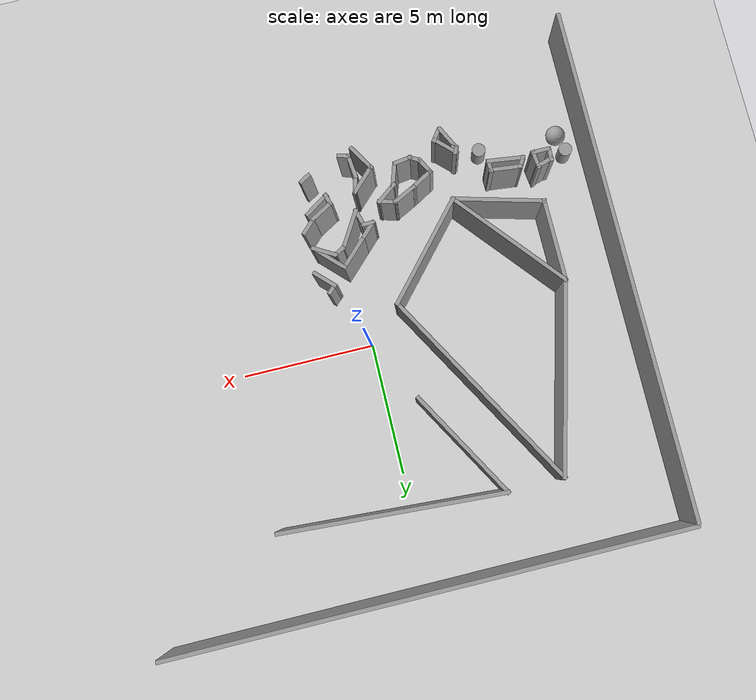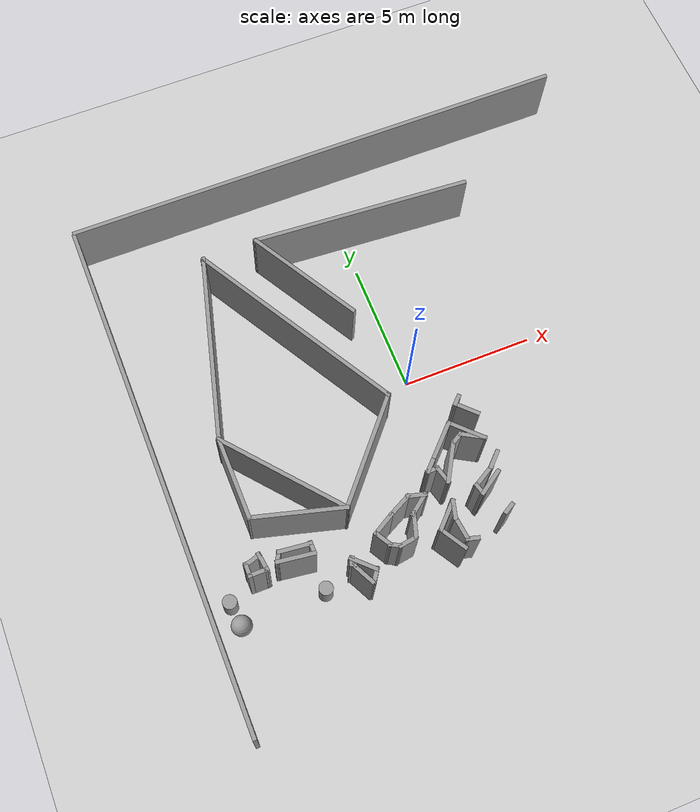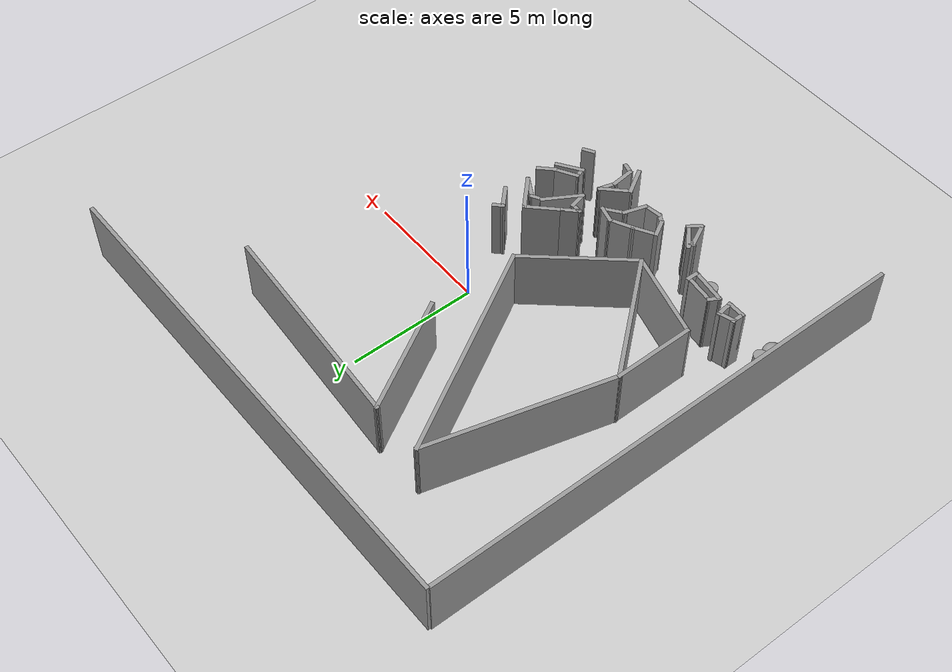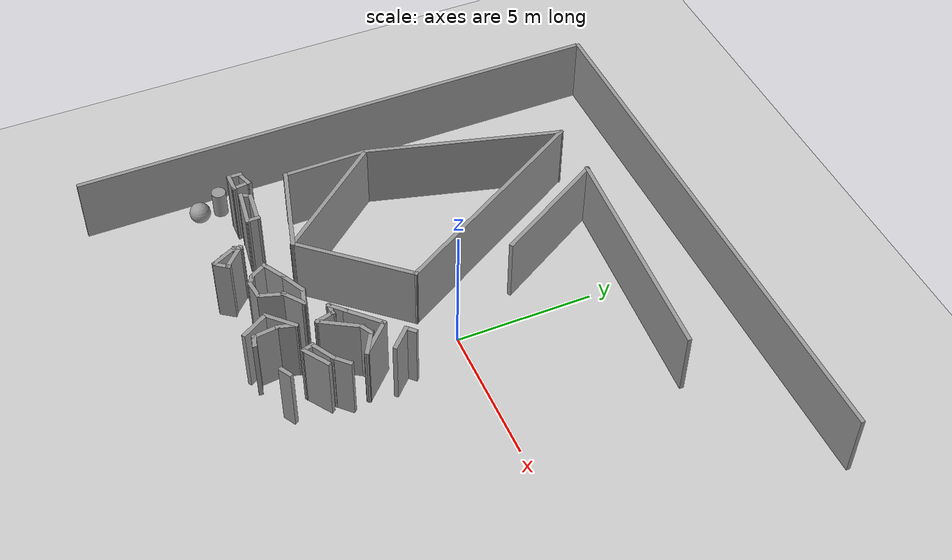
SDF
<sdf version="1.7">
 <world name="default">
  <model name="ground_plane">
   <static>1</static>
   <link name="link">
    <collision name="collision">
     <geometry><plane><normal>0 0 1</normal><size>100 100</size></plane></geometry>
     <surface>
      <contact><collide_bitmask>65535</collide_bitmask></contact>
      <friction><ode><mu>100</mu><mu2>50</mu2></ode></friction>
     </surface>
    </collision>
    <visual name="visual">
     <cast_shadows>0</cast_shadows>
     <geometry><plane><normal>0 0 1</normal><size>100 100</size></plane></geometry>
     <material>
      <script><uri>file://media/materials/scripts/gazebo.material</uri><name>Gazebo/Grey</name></script>
     </material>
    </visual>
   </link>
  </model>
  <model name="Untitled">
   <pose>-0.048209 -0.510974 0 0 -0 0</pose>
   <link name="Wall_100">
    <collision name="Wall_100_Collision">
     <geometry><box><size>0.5 0.15 2.5</size></box></geometry>
     <pose>0 0 1.25 0 -0 0</pose>
    </collision>
    <visual name="Wall_100_Visual">
     <pose>0 0 1.25 0 -0 0</pose>
     <geometry><box><size>0.5 0.15 2.5</size></box></geometry>
     <material>
      <script><uri>file://media/materials/scripts/gazebo.material</uri><name>Gazebo/Grey</name></script>
      <ambient>1 1 1 1</ambient>
     </material>
     <meta><layer>0</layer></meta>
    </visual>
    <pose>0.324081 -4.81813 0 0 -0 -1.309</pose>
   </link>
   <link name="Wall_101">
    <collision name="Wall_101_Collision">
     <geometry><box><size>1.11227 0.15 2.5</size></box></geometry>
     <pose>0 0 1.25 0 -0 0</pose>
    </collision>
    <visual name="Wall_101_Visual">
     <pose>0 0 1.25 0 -0 0</pose>
     <geometry><box><size>1.11227 0.15 2.5</size></box></geometry>
     <material>
      <script><uri>file://media/materials/scripts/gazebo.material</uri><name>Gazebo/Grey</name></script>
      <ambient>1 1 1 1</ambient>
     </material>
     <meta><layer>0</layer></meta>
    </visual>
    <pose>0.769787 -4.72041 0 0 -0 0.587686</pose>
   </link>
   <link name="Wall_105">
    <collision name="Wall_105_Collision">
     <geometry><box><size>1.43609 0.15 2.5</size></box></geometry>
     <pose>0 0 1.25 0 -0 0</pose>
    </collision>
    <visual name="Wall_105_Visual">
     <pose>0 0 1.25 0 -0 0</pose>
     <geometry><box><size>1.43609 0.15 2.5</size></box></geometry>
     <material>
      <script><uri>file://media/materials/scripts/gazebo.material</uri><name>Gazebo/Grey</name></script>
      <ambient>1 1 1 1</ambient>
     </material>
     <meta><layer>0</layer></meta>
    </visual>
    <pose>-6.39374 -4.75098 0 0 -0 3.01015</pose>
   </link>
   <link name="Wall_107">
    <collision name="Wall_107_Collision">
     <geometry><box><size>0.75 0.15 2.5</size></box></geometry>
     <pose>0 0 1.25 0 -0 0</pose>
    </collision>
    <visual name="Wall_107_Visual">
     <pose>0 0 1.25 0 -0 0</pose>
     <geometry><box><size>0.75 0.15 2.5</size></box></geometry>
     <material>
      <script><uri>file://media/materials/scripts/gazebo.material</uri><name>Gazebo/Grey</name></script>
      <ambient>1 1 1 1</ambient>
     </material>
     <meta><layer>0</layer></meta>
    </visual>
    <pose>-7.7393 -4.76864 0 0 -0 0</pose>
   </link>
   <link name="Wall_12">
    <collision name="Wall_12_Collision">
     <geometry><box><size>19.5 0.15 2.5</size></box></geometry>
     <pose>0 0 1.25 0 -0 0</pose>
    </collision>
    <visual name="Wall_12_Visual">
     <pose>0 0 1.25 0 -0 0</pose>
     <geometry><box><size>19.5 0.15 2.5</size></box></geometry>
     <material>
      <script><uri>file://media/materials/scripts/gazebo.material</uri><name>Gazebo/Grey</name></script>
      <ambient>1 1 1 1</ambient>
     </material>
     <meta><layer>0</layer></meta>
    </visual>
    <pose>-9.71201 -0.040722 0 0 -0 1.5708</pose>
   </link>
   <link name="Wall_154">
    <collision name="Wall_154_Collision">
     <geometry><box><size>1.60803 0.15 2.5</size></box></geometry>
     <pose>0 0 1.25 0 -0 0</pose>
    </collision>
    <visual name="Wall_154_Visual">
     <pose>0 0 1.25 0 -0 0</pose>
     <geometry><box><size>1.60803 0.15 2.5</size></box></geometry>
     <material>
      <script><uri>file://media/materials/scripts/gazebo.material</uri><name>Gazebo/Grey</name></script>
      <ambient>1 1 1 1</ambient>
     </material>
     <meta><layer>0</layer></meta>
    </visual>
    <pose>-0.202375 -3.54716 0 0 -0 1.03535</pose>
   </link>
   <link name="Wall_155">
    <collision name="Wall_155_Collision">
     <geometry><box><size>0.50965 0.15 2.5</size></box></geometry>
     <pose>0 0 1.25 0 -0 0</pose>
    </collision>
    <visual name="Wall_155_Visual">
     <pose>0 0 1.25 0 -0 0</pose>
     <geometry><box><size>0.50965 0.15 2.5</size></box></geometry>
     <material>
      <script><uri>file://media/materials/scripts/gazebo.material</uri><name>Gazebo/Grey</name></script>
      <ambient>1 1 1 1</ambient>
     </material>
     <meta><layer>0</layer></meta>
    </visual>
    <pose>0.360562 -2.83275 0 0 -0 0.50772</pose>
   </link>
   <link name="Wall_157">
    <collision name="Wall_157_Collision">
     <geometry><box><size>1.25 0.15 2.5</size></box></geometry>
     <pose>0 0 1.25 0 -0 0</pose>
    </collision>
    <visual name="Wall_157_Visual">
     <pose>0 0 1.25 0 -0 0</pose>
     <geometry><box><size>1.25 0.15 2.5</size></box></geometry>
     <material>
      <script><uri>file://media/materials/scripts/gazebo.material</uri><name>Gazebo/Grey</name></script>
      <ambient>1 1 1 1</ambient>
     </material>
     <meta><layer>0</layer></meta>
    </visual>
    <pose>-1.09648 -5.24869 0 0 -0 -2.35619</pose>
   </link>
   <link name="Wall_158">
    <collision name="Wall_158_Collision">
     <geometry><box><size>1.16438 0.15 2.5</size></box></geometry>
     <pose>0 0 1.25 0 -0 0</pose>
    </collision>
    <visual name="Wall_158_Visual">
     <pose>0 0 1.25 0 -0 0</pose>
     <geometry><box><size>1.16438 0.15 2.5</size></box></geometry>
     <material>
      <script><uri>file://media/materials/scripts/gazebo.material</uri><name>Gazebo/Grey</name></script>
      <ambient>1 1 1 1</ambient>
     </material>
     <meta><layer>0</layer></meta>
    </visual>
    <pose>-1.22348 -6.07192 0 0 -0 -1.02814</pose>
   </link>
   <link name="Wall_160">
    <collision name="Wall_160_Collision">
     <geometry><box><size>0.5 0.15 2.5</size></box></geometry>
     <pose>0 0 1.25 0 -0 0</pose>
    </collision>
    <visual name="Wall_160_Visual">
     <pose>0 0 1.25 0 -0 0</pose>
     <geometry><box><size>0.5 0.15 2.5</size></box></geometry>
     <material>
      <script><uri>file://media/materials/scripts/gazebo.material</uri><name>Gazebo/Grey</name></script>
      <ambient>1 1 1 1</ambient>
     </material>
     <meta><layer>0</layer></meta>
    </visual>
    <pose>-0.603243 -6.30566 0 0 -0 2.87979</pose>
   </link>
   <link name="Wall_161">
    <collision name="Wall_161_Collision">
     <geometry><box><size>0.976019 0.15 2.5</size></box></geometry>
     <pose>0 0 1.25 0 -0 0</pose>
    </collision>
    <visual name="Wall_161_Visual">
     <pose>0 0 1.25 0 -0 0</pose>
     <geometry><box><size>0.976019 0.15 2.5</size></box></geometry>
     <material>
      <script><uri>file://media/materials/scripts/gazebo.material</uri><name>Gazebo/Grey</name></script>
      <ambient>1 1 1 1</ambient>
     </material>
     <meta><layer>0</layer></meta>
    </visual>
    <pose>-0.817573 -5.84985 0 0 -0 1.68068</pose>
   </link>
   <link name="Wall_162">
    <collision name="Wall_162_Collision">
     <geometry><box><size>0.75 0.15 2.5</size></box></geometry>
     <pose>0 0 1.25 0 -0 0</pose>
    </collision>
    <visual name="Wall_162_Visual">
     <pose>0 0 1.25 0 -0 0</pose>
     <geometry><box><size>0.75 0.15 2.5</size></box></geometry>
     <material>
      <script><uri>file://media/materials/scripts/gazebo.material</uri><name>Gazebo/Grey</name></script>
      <ambient>1 1 1 1</ambient>
     </material>
     <meta><layer>0</layer></meta>
    </visual>
    <pose>-0.785221 -5.14955 0 0 -0 1.309</pose>
   </link>
   <link name="Wall_183">
    <collision name="Wall_183_Collision">
     <geometry><box><size>0.5 0.15 2.5</size></box></geometry>
     <pose>0 0 1.25 0 -0 0</pose>
    </collision>
    <visual name="Wall_183_Visual">
     <pose>0 0 1.25 0 -0 0</pose>
     <geometry><box><size>0.5 0.15 2.5</size></box></geometry>
     <material>
      <script><uri>file://media/materials/scripts/gazebo.material</uri><name>Gazebo/Grey</name></script>
      <ambient>1 1 1 1</ambient>
     </material>
     <meta><layer>0</layer></meta>
    </visual>
    <pose>0.971964 -5.79384 0 0 -0 -2.61799</pose>
   </link>
   <link name="Wall_187">
    <collision name="Wall_187_Collision">
     <geometry><box><size>0.25 0.15 2.5</size></box></geometry>
     <pose>0 0 1.25 0 -0 0</pose>
    </collision>
    <visual name="Wall_187_Visual">
     <pose>0 0 1.25 0 -0 0</pose>
     <geometry><box><size>0.25 0.15 2.5</size></box></geometry>
     <material>
      <script><uri>file://media/materials/scripts/gazebo.material</uri><name>Gazebo/Grey</name></script>
      <ambient>1 1 1 1</ambient>
     </material>
     <meta><layer>0</layer></meta>
    </visual>
    <pose>-4.68404 -5.66781 0 0 -0 2.61799</pose>
   </link>
   <link name="Wall_188">
    <collision name="Wall_188_Collision">
     <geometry><box><size>0.365456 0.15 2.5</size></box></geometry>
     <pose>0 0 1.25 0 -0 0</pose>
    </collision>
    <visual name="Wall_188_Visual">
     <pose>0 0 1.25 0 -0 0</pose>
     <geometry><box><size>0.365456 0.15 2.5</size></box></geometry>
     <material>
      <script><uri>file://media/materials/scripts/gazebo.material</uri><name>Gazebo/Grey</name></script>
      <ambient>1 1 1 1</ambient>
     </material>
     <meta><layer>0</layer></meta>
    </visual>
    <pose>-4.68386 -5.54425 0 0 -0 1.15532</pose>
   </link>
   <link name="Wall_189">
    <collision name="Wall_189_Collision">
     <geometry><box><size>1.05648 0.15 2.5</size></box></geometry>
     <pose>0 0 1.25 0 -0 0</pose>
    </collision>
    <visual name="Wall_189_Visual">
     <pose>0 0 1.25 0 -0 0</pose>
     <geometry><box><size>1.05648 0.15 2.5</size></box></geometry>
     <material>
      <script><uri>file://media/materials/scripts/gazebo.material</uri><name>Gazebo/Grey</name></script>
      <ambient>1 1 1 1</ambient>
     </material>
     <meta><layer>0</layer></meta>
    </visual>
    <pose>-4.36097 -5.7621 0 0 -0 -0.772761</pose>
   </link>
   <link name="Wall_190">
    <collision name="Wall_190_Collision">
     <geometry><box><size>0.610155 0.15 2.5</size></box></geometry>
     <pose>0 0 1.25 0 -0 0</pose>
    </collision>
    <visual name="Wall_190_Visual">
     <pose>0 0 1.25 0 -0 0</pose>
     <geometry><box><size>0.610155 0.15 2.5</size></box></geometry>
     <material>
      <script><uri>file://media/materials/scripts/gazebo.material</uri><name>Gazebo/Grey</name></script>
      <ambient>1 1 1 1</ambient>
     </material>
     <meta><layer>0</layer></meta>
    </visual>
    <pose>-4.1261 -6.265 0 0 -0 -2.1965</pose>
   </link>
   <link name="Wall_198">
    <collision name="Wall_198_Collision">
     <geometry><box><size>1 0.15 2.5</size></box></geometry>
     <pose>0 0 1.25 0 -0 0</pose>
    </collision>
    <visual name="Wall_198_Visual">
     <pose>0 0 1.25 0 -0 0</pose>
     <geometry><box><size>1 0.15 2.5</size></box></geometry>
     <material>
      <script><uri>file://media/materials/scripts/gazebo.material</uri><name>Gazebo/Grey</name></script>
      <ambient>1 1 1 1</ambient>
     </material>
     <meta><layer>0</layer></meta>
    </visual>
    <pose>-3.20872 -4.75262 0 0 -0 -2.61799</pose>
   </link>
   <link name="Wall_200">
    <collision name="Wall_200_Collision">
     <geometry><box><size>0.75 0.15 2.5</size></box></geometry>
     <pose>0 0 1.25 0 -0 0</pose>
    </collision>
    <visual name="Wall_200_Visual">
     <pose>0 0 1.25 0 -0 0</pose>
     <geometry><box><size>0.75 0.15 2.5</size></box></geometry>
     <material>
      <script><uri>file://media/materials/scripts/gazebo.material</uri><name>Gazebo/Grey</name></script>
      <ambient>1 1 1 1</ambient>
     </material>
     <meta><layer>0</layer></meta>
    </visual>
    <pose>-3.42679 -5.22493 0 0 -0 -1.0472</pose>
   </link>
   <link name="Wall_201">
    <collision name="Wall_201_Collision">
     <geometry><box><size>0.5 0.15 2.5</size></box></geometry>
     <pose>0 0 1.25 0 -0 0</pose>
    </collision>
    <visual name="Wall_201_Visual">
     <pose>0 0 1.25 0 -0 0</pose>
     <geometry><box><size>0.5 0.15 2.5</size></box></geometry>
     <material>
      <script><uri>file://media/materials/scripts/gazebo.material</uri><name>Gazebo/Grey</name></script>
      <ambient>1 1 1 1</ambient>
     </material>
     <meta><layer>0</layer></meta>
    </visual>
    <pose>-3.12523 -5.57223 0 0 -0 -0.523599</pose>
   </link>
   <link name="Wall_202">
    <collision name="Wall_202_Collision">
     <geometry><box><size>0.728121 0.15 2.5</size></box></geometry>
     <pose>0 0 1.25 0 -0 0</pose>
    </collision>
    <visual name="Wall_202_Visual">
     <pose>0 0 1.25 0 -0 0</pose>
     <geometry><box><size>0.728121 0.15 2.5</size></box></geometry>
     <material>
      <script><uri>file://media/materials/scripts/gazebo.material</uri><name>Gazebo/Grey</name></script>
      <ambient>1 1 1 1</ambient>
     </material>
     <meta><layer>0</layer></meta>
    </visual>
    <pose>-2.68745 -5.61934 0 0 -0 0.140199</pose>
   </link>
   <link name="Wall_203">
    <collision name="Wall_203_Collision">
     <geometry><box><size>0.967778 0.15 2.5</size></box></geometry>
     <pose>0 0 1.25 0 -0 0</pose>
    </collision>
    <visual name="Wall_203_Visual">
     <pose>0 0 1.25 0 -0 0</pose>
     <geometry><box><size>0.967778 0.15 2.5</size></box></geometry>
     <material>
      <script><uri>file://media/materials/scripts/gazebo.material</uri><name>Gazebo/Grey</name></script>
      <ambient>1 1 1 1</ambient>
     </material>
     <meta><layer>0</layer></meta>
    </visual>
    <pose>-2.23811 -5.15928 0 0 -0 1.26436</pose>
   </link>
   <link name="Wall_23">
    <collision name="Wall_23_Collision">
     <geometry><box><size>0.998473 0.15 2.5</size></box></geometry>
     <pose>0 0 1.25 0 -0 0</pose>
    </collision>
    <visual name="Wall_23_Visual">
     <pose>0 0 1.25 0 -0 0</pose>
     <geometry><box><size>0.998473 0.15 2.5</size></box></geometry>
     <material>
      <script><uri>file://media/materials/scripts/gazebo.material</uri><name>Gazebo/Grey</name></script>
      <ambient>1 1 1 1</ambient>
     </material>
     <meta><layer>0</layer></meta>
    </visual>
    <pose>-4.4959 -6.07215 0 0 -0 2.03502</pose>
   </link>
   <link name="Wall_235">
    <collision name="Wall_235_Collision">
     <geometry><box><size>0.5 0.15 2.5</size></box></geometry>
     <pose>0 0 1.25 0 -0 0</pose>
    </collision>
    <visual name="Wall_235_Visual">
     <pose>0 0 1.25 0 -0 0</pose>
     <geometry><box><size>0.5 0.15 2.5</size></box></geometry>
     <material>
      <script><uri>file://media/materials/scripts/gazebo.material</uri><name>Gazebo/Grey</name></script>
      <ambient>1 1 1 1</ambient>
     </material>
     <meta><layer>0</layer></meta>
    </visual>
    <pose>-5.75624 -4.62985 0 0 -0 1.5708</pose>
   </link>
   <link name="Wall_236">
    <collision name="Wall_236_Collision">
     <geometry><box><size>1.25671 0.15 2.5</size></box></geometry>
     <pose>0 0 1.25 0 -0 0</pose>
    </collision>
    <visual name="Wall_236_Visual">
     <pose>0 0 1.25 0 -0 0</pose>
     <geometry><box><size>1.25671 0.15 2.5</size></box></geometry>
     <material>
      <script><uri>file://media/materials/scripts/gazebo.material</uri><name>Gazebo/Grey</name></script>
      <ambient>1 1 1 1</ambient>
     </material>
     <meta><layer>0</layer></meta>
    </visual>
    <pose>-6.30624 -4.42443 0 0 -0 3.03143</pose>
   </link>
   <link name="Wall_237">
    <collision name="Wall_237_Collision">
     <geometry><box><size>0.5 0.15 2.5</size></box></geometry>
     <pose>0 0 1.25 0 -0 0</pose>
    </collision>
    <visual name="Wall_237_Visual">
     <pose>0 0 1.25 0 -0 0</pose>
     <geometry><box><size>0.5 0.15 2.5</size></box></geometry>
     <material>
      <script><uri>file://media/materials/scripts/gazebo.material</uri><name>Gazebo/Grey</name></script>
      <ambient>1 1 1 1</ambient>
     </material>
     <meta><layer>0</layer></meta>
    </visual>
    <pose>-6.94374 -4.51515 0 0 -0 -2.0944</pose>
   </link>
   <link name="Wall_239">
    <collision name="Wall_239_Collision">
     <geometry><box><size>0.729517 0.15 2.5</size></box></geometry>
     <pose>0 0 1.25 0 -0 0</pose>
    </collision>
    <visual name="Wall_239_Visual">
     <pose>0 0 1.25 0 -0 0</pose>
     <geometry><box><size>0.729517 0.15 2.5</size></box></geometry>
     <material>
      <script><uri>file://media/materials/scripts/gazebo.material</uri><name>Gazebo/Grey</name></script>
      <ambient>1 1 1 1</ambient>
     </material>
     <meta><layer>0</layer></meta>
    </visual>
    <pose>-7.47658 -4.48129 0 0 -0 1.69981</pose>
   </link>
   <link name="Wall_240">
    <collision name="Wall_240_Collision">
     <geometry><box><size>0.7004 0.15 2.5</size></box></geometry>
     <pose>0 0 1.25 0 -0 0</pose>
    </collision>
    <visual name="Wall_240_Visual">
     <pose>0 0 1.25 0 -0 0</pose>
     <geometry><box><size>0.7004 0.15 2.5</size></box></geometry>
     <material>
      <script><uri>file://media/materials/scripts/gazebo.material</uri><name>Gazebo/Grey</name></script>
      <ambient>1 1 1 1</ambient>
     </material>
     <meta><layer>0</layer></meta>
    </visual>
    <pose>-7.77658 -4.30629 0 0 -0 -2.83929</pose>
   </link>
   <link name="Wall_241">
    <collision name="Wall_241_Collision">
     <geometry><box><size>0.560835 0.15 2.5</size></box></geometry>
     <pose>0 0 1.25 0 -0 0</pose>
    </collision>
    <visual name="Wall_241_Visual">
     <pose>0 0 1.25 0 -0 0</pose>
     <geometry><box><size>0.560835 0.15 2.5</size></box></geometry>
     <material>
      <script><uri>file://media/materials/scripts/gazebo.material</uri><name>Gazebo/Grey</name></script>
      <ambient>1 1 1 1</ambient>
     </material>
     <meta><layer>0</layer></meta>
    </visual>
    <pose>-8.0393 -4.56323 0 0 -0 -1.5708</pose>
   </link>
   <link name="Wall_248">
    <collision name="Wall_248_Collision">
     <geometry><box><size>0.75 0.15 2.5</size></box></geometry>
     <pose>0 0 1.25 0 -0 0</pose>
    </collision>
    <visual name="Wall_248_Visual">
     <pose>0 0 1.25 0 -0 0</pose>
     <geometry><box><size>0.75 0.15 2.5</size></box></geometry>
     <material>
      <script><uri>file://media/materials/scripts/gazebo.material</uri><name>Gazebo/Grey</name></script>
      <ambient>1 1 1 1</ambient>
     </material>
     <meta><layer>0</layer></meta>
    </visual>
    <pose>-0.867495 -3.38245 0 0 -0 -2.35619</pose>
   </link>
   <link name="Wall_249">
    <collision name="Wall_249_Collision">
     <geometry><box><size>0.5 0.15 2.5</size></box></geometry>
     <pose>0 0 1.25 0 -0 0</pose>
    </collision>
    <visual name="Wall_249_Visual">
     <pose>0 0 1.25 0 -0 0</pose>
     <geometry><box><size>0.5 0.15 2.5</size></box></geometry>
     <material>
      <script><uri>file://media/materials/scripts/gazebo.material</uri><name>Gazebo/Grey</name></script>
      <ambient>1 1 1 1</ambient>
     </material>
     <meta><layer>0</layer></meta>
    </visual>
    <pose>-0.904628 -3.59458 0 0 -0 0</pose>
   </link>
   <link name="Wall_250">
    <collision name="Wall_250_Collision">
     <geometry><box><size>0.75 0.15 2.5</size></box></geometry>
     <pose>0 0 1.25 0 -0 0</pose>
    </collision>
    <visual name="Wall_250_Visual">
     <pose>0 0 1.25 0 -0 0</pose>
     <geometry><box><size>0.75 0.15 2.5</size></box></geometry>
     <material>
      <script><uri>file://media/materials/scripts/gazebo.material</uri><name>Gazebo/Grey</name></script>
      <ambient>1 1 1 1</ambient>
     </material>
     <meta><layer>0</layer></meta>
    </visual>
    <pose>-0.651982 -3.88436 0 0 -0 -1.309</pose>
   </link>
   <link name="Wall_260">
    <collision name="Wall_260_Collision">
     <geometry><box><size>4.53396 0.15 2.5</size></box></geometry>
     <pose>0 0 1.25 0 -0 0</pose>
    </collision>
    <visual name="Wall_260_Visual">
     <pose>0 0 1.25 0 -0 0</pose>
     <geometry><box><size>4.53396 0.15 2.5</size></box></geometry>
     <material>
      <script><uri>file://media/materials/scripts/gazebo.material</uri><name>Gazebo/Grey</name></script>
      <ambient>1 1 1 1</ambient>
     </material>
     <meta><layer>0</layer></meta>
    </visual>
    <pose>-2.69599 -2.10998 0 0 -0 0.852291</pose>
   </link>
   <link name="Wall_261">
    <collision name="Wall_261_Collision">
     <geometry><box><size>8.75 0.15 2.5</size></box></geometry>
     <pose>0 0 1.25 0 -0 0</pose>
    </collision>
    <visual name="Wall_261_Visual">
     <pose>0 0 1.25 0 -0 0</pose>
     <geometry><box><size>8.75 0.15 2.5</size></box></geometry>
     <material>
      <script><uri>file://media/materials/scripts/gazebo.material</uri><name>Gazebo/Grey</name></script>
      <ambient>1 1 1 1</ambient>
     </material>
     <meta><layer>0</layer></meta>
    </visual>
    <pose>-3.4031 3.26404 0 0 -0 2.0944</pose>
   </link>
   <link name="Wall_262">
    <collision name="Wall_262_Collision">
     <geometry><box><size>7.25 0.15 2.5</size></box></geometry>
     <pose>0 0 1.25 0 -0 0</pose>
    </collision>
    <visual name="Wall_262_Visual">
     <pose>0 0 1.25 0 -0 0</pose>
     <geometry><box><size>7.25 0.15 2.5</size></box></geometry>
     <material>
      <script><uri>file://media/materials/scripts/gazebo.material</uri><name>Gazebo/Grey</name></script>
      <ambient>1 1 1 1</ambient>
     </material>
     <meta><layer>0</layer></meta>
    </visual>
    <pose>-6.4719 3.55891 0 0 -0 -1.8326</pose>
   </link>
   <link name="Wall_263">
    <collision name="Wall_263_Collision">
     <geometry><box><size>5.22012 0.15 2.5</size></box></geometry>
     <pose>0 0 1.25 0 -0 0</pose>
    </collision>
    <visual name="Wall_263_Visual">
     <pose>0 0 1.25 0 -0 0</pose>
     <geometry><box><size>5.22012 0.15 2.5</size></box></geometry>
     <material>
      <script><uri>file://media/materials/scripts/gazebo.material</uri><name>Gazebo/Grey</name></script>
      <ambient>1 1 1 1</ambient>
     </material>
     <meta><layer>0</layer></meta>
    </visual>
    <pose>-5.7648 -1.8151 0 0 -0 -0.874512</pose>
   </link>
   <link name="Wall_264">
    <collision name="Wall_264_Collision">
     <geometry><box><size>3.5 0.15 2.5</size></box></geometry>
     <pose>0 0 1.25 0 -0 0</pose>
    </collision>
    <visual name="Wall_264_Visual">
     <pose>0 0 1.25 0 -0 0</pose>
     <geometry><box><size>3.5 0.15 2.5</size></box></geometry>
     <material>
      <script><uri>file://media/materials/scripts/gazebo.material</uri><name>Gazebo/Grey</name></script>
      <ambient>1 1 1 1</ambient>
     </material>
     <meta><layer>0</layer></meta>
    </visual>
    <pose>-5.75681 -3.32656 0 0 -0 2.87979</pose>
   </link>
   <link name="Wall_265">
    <collision name="Wall_265_Collision">
     <geometry><box><size>3.17295 0.15 2.5</size></box></geometry>
     <pose>0 0 1.25 0 -0 0</pose>
    </collision>
    <visual name="Wall_265_Visual">
     <pose>0 0 1.25 0 -0 0</pose>
     <geometry><box><size>3.17295 0.15 2.5</size></box></geometry>
     <material>
      <script><uri>file://media/materials/scripts/gazebo.material</uri><name>Gazebo/Grey</name></script>
      <ambient>1 1 1 1</ambient>
     </material>
     <meta><layer>0</layer></meta>
    </visual>
    <pose>-7.38272 -1.38158 0 0 -0 1.57608</pose>
   </link>
   <link name="Wall_269">
    <collision name="Wall_269_Collision">
     <geometry><box><size>4.75 0.15 2.5</size></box></geometry>
     <pose>0 0 1.25 0 -0 0</pose>
    </collision>
    <visual name="Wall_269_Visual">
     <pose>0 0 1.25 0 -0 0</pose>
     <geometry><box><size>4.75 0.15 2.5</size></box></geometry>
     <material>
      <script><uri>file://media/materials/scripts/gazebo.material</uri><name>Gazebo/Grey</name></script>
      <ambient>1 1 1 1</ambient>
     </material>
     <meta><layer>0</layer></meta>
    </visual>
    <pose>-2.33277 5.02317 0 0 -0 2.0944</pose>
   </link>
   <link name="Wall_270">
    <collision name="Wall_270_Collision">
     <geometry><box><size>8.40886 0.15 2.5</size></box></geometry>
     <pose>0 0 1.25 0 -0 0</pose>
    </collision>
    <visual name="Wall_270_Visual">
     <pose>0 0 1.25 0 -0 0</pose>
     <geometry><box><size>8.40886 0.15 2.5</size></box></geometry>
     <material>
      <script><uri>file://media/materials/scripts/gazebo.material</uri><name>Gazebo/Grey</name></script>
      <ambient>1 1 1 1</ambient>
     </material>
     <meta><layer>0</layer></meta>
    </visual>
    <pose>0.638265 6.75191 0 0 -0 -0.063762</pose>
   </link>
   <link name="Wall_28">
    <collision name="Wall_28_Collision">
     <geometry><box><size>1.01626 0.15 2.5</size></box></geometry>
     <pose>0 0 1.25 0 -0 0</pose>
    </collision>
    <visual name="Wall_28_Visual">
     <pose>0 0 1.25 0 -0 0</pose>
     <geometry><box><size>1.01626 0.15 2.5</size></box></geometry>
     <material>
      <script><uri>file://media/materials/scripts/gazebo.material</uri><name>Gazebo/Grey</name></script>
      <ambient>1 1 1 1</ambient>
     </material>
     <meta><layer>0</layer></meta>
    </visual>
    <pose>-2.4534 -4.34613 0 0 -0 0.464383</pose>
   </link>
   <link name="Wall_33">
    <collision name="Wall_33_Collision">
     <geometry><box><size>1.5 0.15 2.5</size></box></geometry>
     <pose>0 0 1.25 0 -0 0</pose>
    </collision>
    <visual name="Wall_33_Visual">
     <pose>0 0 1.25 0 -0 0</pose>
     <geometry><box><size>1.5 0.15 2.5</size></box></geometry>
     <material>
      <script><uri>file://media/materials/scripts/gazebo.material</uri><name>Gazebo/Grey</name></script>
      <ambient>1 1 1 1</ambient>
     </material>
     <meta><layer>0</layer></meta>
    </visual>
    <pose>-0.178066 -2.69302 0 0 -0 -2.35619</pose>
   </link>
   <link name="Wall_75">
    <collision name="Wall_75_Collision">
     <geometry><box><size>0.75 0.15 2.5</size></box></geometry>
     <pose>0 0 1.25 0 -0 0</pose>
    </collision>
    <visual name="Wall_75_Visual">
     <pose>0 0 1.25 0 -0 0</pose>
     <geometry><box><size>0.75 0.15 2.5</size></box></geometry>
     <material>
      <script><uri>file://media/materials/scripts/gazebo.material</uri><name>Gazebo/Grey</name></script>
      <ambient>1 1 1 1</ambient>
     </material>
     <meta><layer>0</layer></meta>
    </visual>
    <pose>1.22704 -4.01196 0 0 -0 0.785398</pose>
   </link>
   <link name="Wall_8">
    <collision name="Wall_8_Collision">
     <geometry><box><size>19.5 0.15 2.5</size></box></geometry>
     <pose>0 0 1.25 0 -0 0</pose>
    </collision>
    <visual name="Wall_8_Visual">
     <pose>0 0 1.25 0 -0 0</pose>
     <geometry><box><size>19.5 0.15 2.5</size></box></geometry>
     <material>
      <script><uri>file://media/materials/scripts/gazebo.material</uri><name>Gazebo/Grey</name></script>
      <ambient>1 1 1 1</ambient>
     </material>
     <meta><layer>0</layer></meta>
    </visual>
    <pose>0.006859 9.74587 0 0 -0 0</pose>
   </link>
   <link name="Wall_85">
    <collision name="Wall_85_Collision">
     <geometry><box><size>0.977493 0.15 2.5</size></box></geometry>
     <pose>0 0 1.25 0 -0 0</pose>
    </collision>
    <visual name="Wall_85_Visual">
     <pose>0 0 1.25 0 -0 0</pose>
     <geometry><box><size>0.977493 0.15 2.5</size></box></geometry>
     <material>
      <script><uri>file://media/materials/scripts/gazebo.material</uri><name>Gazebo/Grey</name></script>
      <ambient>1 1 1 1</ambient>
     </material>
     <meta><layer>0</layer></meta>
    </visual>
    <pose>-1.82553 -4.54838 0 0 -0 0.651495</pose>
   </link>
   <link name="Wall_86">
    <collision name="Wall_86_Collision">
     <geometry><box><size>0.75 0.15 2.5</size></box></geometry>
     <pose>0 0 1.25 0 -0 0</pose>
    </collision>
    <visual name="Wall_86_Visual">
     <pose>0 0 1.25 0 -0 0</pose>
     <geometry><box><size>0.75 0.15 2.5</size></box></geometry>
     <material>
      <script><uri>file://media/materials/scripts/gazebo.material</uri><name>Gazebo/Grey</name></script>
      <ambient>1 1 1 1</ambient>
     </material>
     <meta><layer>0</layer></meta>
    </visual>
    <pose>-1.77636 -4.22979 0 0 -0 2.87979</pose>
   </link>
   <link name="Wall_91">
    <collision name="Wall_91_Collision">
     <geometry><box><size>1 0.15 2.5</size></box></geometry>
     <pose>0 0 1.25 0 -0 0</pose>
    </collision>
    <visual name="Wall_91_Visual">
     <pose>0 0 1.25 0 -0 0</pose>
     <geometry><box><size>1 0.15 2.5</size></box></geometry>
     <material>
      <script><uri>file://media/materials/scripts/gazebo.material</uri><name>Gazebo/Grey</name></script>
      <ambient>1 1 1 1</ambient>
     </material>
     <meta><layer>0</layer></meta>
    </visual>
    <pose>0.885764 -2.95782 0 0 -0 -0.523599</pose>
   </link>
   <link name="Wall_92">
    <collision name="Wall_92_Collision">
     <geometry><box><size>1.5 0.15 2.5</size></box></geometry>
     <pose>0 0 1.25 0 -0 0</pose>
    </collision>
    <visual name="Wall_92_Visual">
     <pose>0 0 1.25 0 -0 0</pose>
     <geometry><box><size>1.5 0.15 2.5</size></box></geometry>
     <material>
      <script><uri>file://media/materials/scripts/gazebo.material</uri><name>Gazebo/Grey</name></script>
      <ambient>1 1 1 1</ambient>
     </material>
     <meta><layer>0</layer></meta>
    </visual>
    <pose>0.776528 -2.69302 0 0 -0 2.35619</pose>
   </link>
   <link name="Wall_95">
    <collision name="Wall_95_Collision">
     <geometry><box><size>0.466604 0.15 2.5</size></box></geometry>
     <pose>0 0 1.25 0 -0 0</pose>
    </collision>
    <visual name="Wall_95_Visual">
     <pose>0 0 1.25 0 -0 0</pose>
     <geometry><box><size>0.466604 0.15 2.5</size></box></geometry>
     <material>
      <script><uri>file://media/materials/scripts/gazebo.material</uri><name>Gazebo/Grey</name></script>
      <ambient>1 1 1 1</ambient>
     </material>
     <meta><layer>0</layer></meta>
    </visual>
    <pose>0.914139 -1.5416 0 0 -0 -2.36593</pose>
   </link>
   <link name="Wall_96">
    <collision name="Wall_96_Collision">
     <geometry><box><size>1 0.15 2.5</size></box></geometry>
     <pose>0 0 1.25 0 -0 0</pose>
    </collision>
    <visual name="Wall_96_Visual">
     <pose>0 0 1.25 0 -0 0</pose>
     <geometry><box><size>1 0.15 2.5</size></box></geometry>
     <material>
      <script><uri>file://media/materials/scripts/gazebo.material</uri><name>Gazebo/Grey</name></script>
      <ambient>1 1 1 1</ambient>
     </material>
     <meta><layer>0</layer></meta>
    </visual>
    <pose>1.10164 -1.95296 0 0 -0 -0.785398</pose>
   </link>
   <link name="Wall_99">
    <collision name="Wall_99_Collision">
     <geometry><box><size>1 0.15 2.5</size></box></geometry>
     <pose>0 0 1.25 0 -0 0</pose>
    </collision>
    <visual name="Wall_99_Visual">
     <pose>0 0 1.25 0 -0 0</pose>
     <geometry><box><size>1 0.15 2.5</size></box></geometry>
     <material>
      <script><uri>file://media/materials/scripts/gazebo.material</uri><name>Gazebo/Grey</name></script>
      <ambient>1 1 1 1</ambient>
     </material>
     <meta><layer>0</layer></meta>
    </visual>
    <pose>0.646848 -4.43659 0 0 -0 -2.61799</pose>
   </link>
   <static>1</static>
  </model>
  <model name="unit_cylinder_clone_1">
   <pose>-5.74792 -6.29318 0.499991 0 -0 0</pose>
   <link name="link">
    <inertial>
     <mass>1</mass>
     <inertia><ixx>0.145833</ixx><ixy>0</ixy><ixz>0</ixz><iyy>0.145833</iyy><iyz>0</iyz><izz>0.125</izz></inertia>
    </inertial>
    <collision name="collision">
     <geometry><cylinder><radius>0.261067</radius><length>1</length></cylinder></geometry>
    </collision>
    <visual name="visual">
     <geometry><cylinder><radius>0.261067</radius><length>1</length></cylinder></geometry>
     <material>
      <script><name>Gazebo/Grey</name><uri>file://media/materials/scripts/gazebo.material</uri></script>
     </material>
    </visual>
   </link>
  </model>
  <model name="unit_cylinder_clone_2">
   <pose>-8.99677 -5.53256 0.499999 0 -0 1e-06</pose>
   <link name="link">
    <inertial>
     <mass>1</mass>
     <inertia><ixx>0.145833</ixx><ixy>0</ixy><ixz>0</ixz><iyy>0.145833</iyy><iyz>0</iyz><izz>0.125</izz></inertia>
    </inertial>
    <collision name="collision">
     <geometry><cylinder><radius>0.261067</radius><length>1</length></cylinder></geometry>
    </collision>
    <visual name="visual">
     <geometry><cylinder><radius>0.261067</radius><length>1</length></cylinder></geometry>
     <material>
      <script><name>Gazebo/Grey</name><uri>file://media/materials/scripts/gazebo.material</uri></script>
     </material>
    </visual>
   </link>
  </model>
  <model name="unit_sphere_clone_0">
   <pose>-8.87886 -6.32665 0.379494 0 -0 0</pose>
   <link name="link">
    <inertial>
     <mass>1</mass>
     <inertia><ixx>0.1</ixx><ixy>0</ixy><ixz>0</ixz><iyy>0.1</iyy><iyz>0</iyz><izz>0.1</izz></inertia>
    </inertial>
    <collision name="collision"><geometry><sphere><radius>0.379494</radius></sphere></geometry></collision>
    <visual name="visual">
     <geometry><sphere><radius>0.379494</radius></sphere></geometry>
     <material>
      <script><name>Gazebo/Grey</name><uri>file://media/materials/scripts/gazebo.material</uri></script>
     </material>
    </visual>
   </link>
  </model>
 </world>
</sdf>
